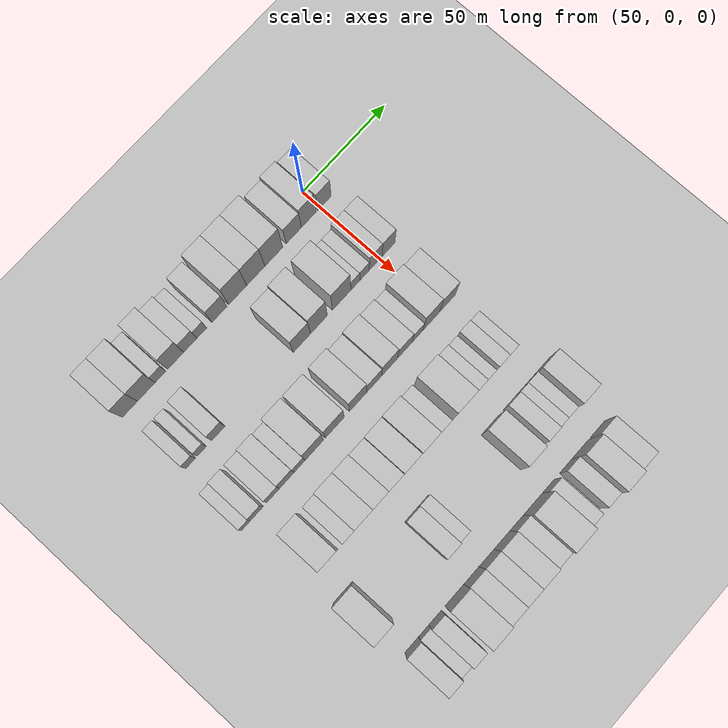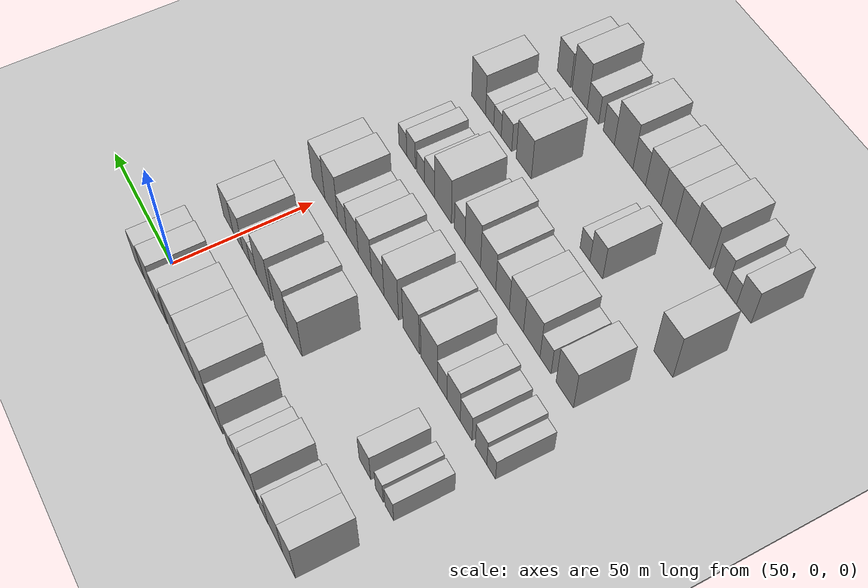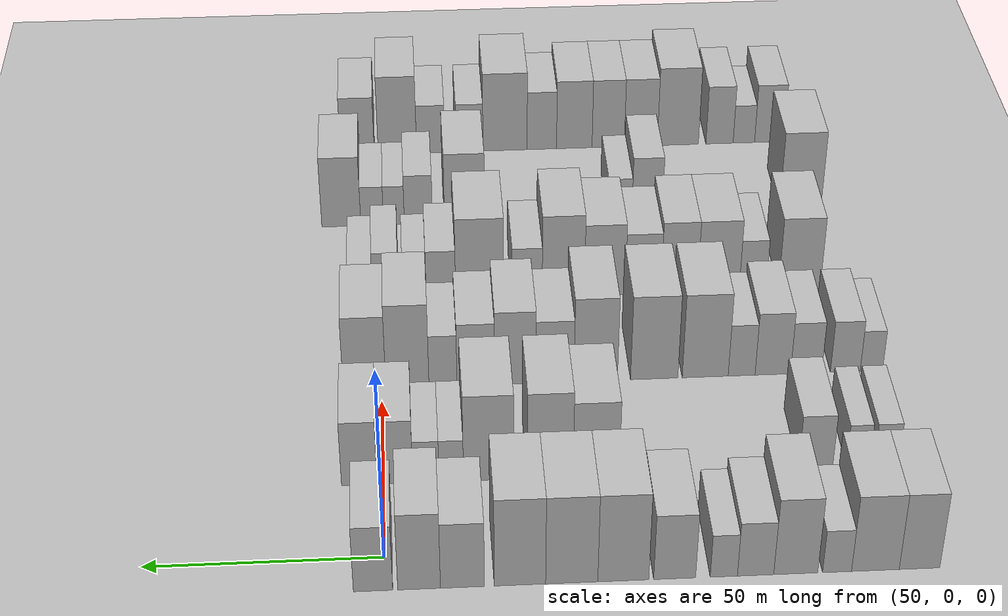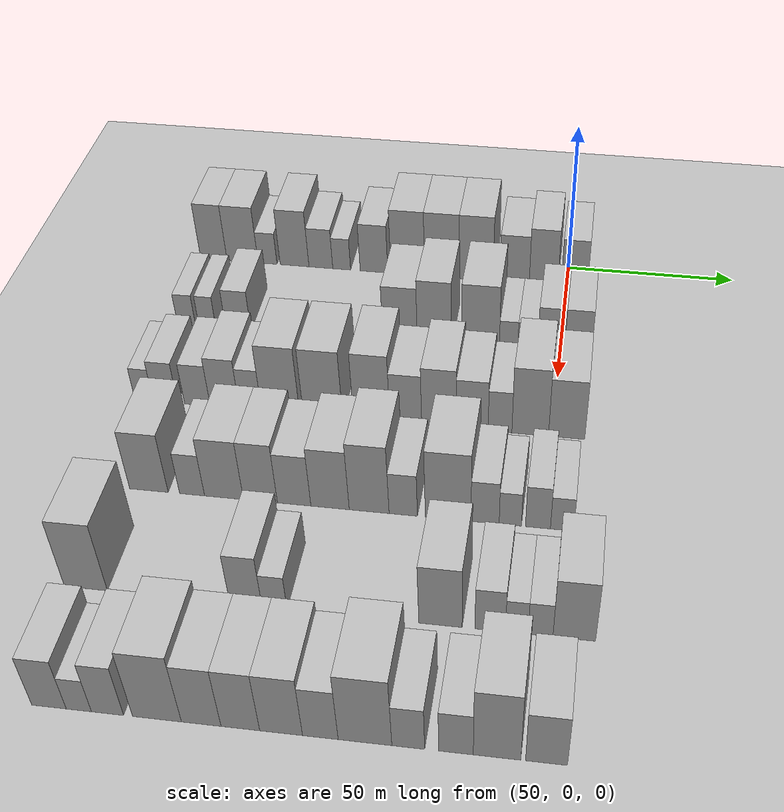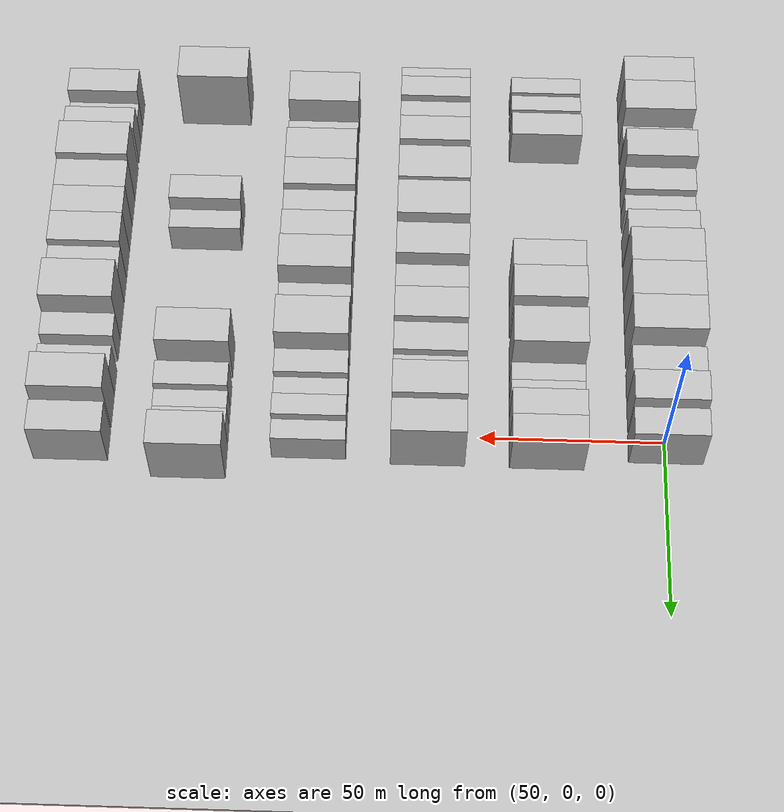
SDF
<sdf version="1.6">
 <world name="default">
  <include><name>ground_plane_1</name><uri>model://HANNAS_ground_plane</uri></include>
  <include>
   <name>ground_plane_2</name>
   <uri>model://HANNAS_ground_plane</uri>
   <pose>100 0 0  0 0 0</pose>
  </include>
  <model name="building_50">
   <static>1</static>
   <pose>50.0000 -109.7493 0 0.000000 0.000000 0.000000</pose>
   <link name="link">
    <pose>0 0 10.50 0 0 0</pose>
    <collision name="collision"><geometry><box><size>20.0000 8.4265 21.0000</size></box></geometry></collision>
    <visual name="visual">
     <cast_shadows>0</cast_shadows>
     <geometry><box><size>20.0000 8.4265 21.0000</size></box></geometry>
     <material>
      <script>
       <uri>model://HANNAS_wall/materials/scripts</uri>
       <uri>model://HANNAS_wall/materials/textures</uri>
       <name>vrc/HANNAS_wall</name>
      </script>
     </material>
    </visual>
   </link>
  </model>
  <model name="building_51">
   <static>1</static>
   <pose>50.0000 -100.5956 0 0.000000 0.000000 0.000000</pose>
   <link name="link">
    <pose>0 0 10.50 0 0 0</pose>
    <collision name="collision"><geometry><box><size>20.0000 9.8809 21.0000</size></box></geometry></collision>
    <visual name="visual">
     <cast_shadows>0</cast_shadows>
     <geometry><box><size>20.0000 9.8809 21.0000</size></box></geometry>
     <material>
      <script>
       <uri>model://HANNAS_wall/materials/scripts</uri>
       <uri>model://HANNAS_wall/materials/textures</uri>
       <name>vrc/HANNAS_wall</name>
      </script>
     </material>
    </visual>
   </link>
  </model>
  <model name="building_52">
   <static>1</static>
   <pose>50.0000 -92.6621 0 0.000000 0.000000 0.000000</pose>
   <link name="link">
    <pose>0 0 6.00 0 0 0</pose>
    <collision name="collision"><geometry><box><size>20.0000 5.9861 12.0000</size></box></geometry></collision>
    <visual name="visual">
     <cast_shadows>0</cast_shadows>
     <geometry><box><size>20.0000 5.9861 12.0000</size></box></geometry>
     <material>
      <script>
       <uri>model://HANNAS_wall/materials/scripts</uri>
       <uri>model://HANNAS_wall/materials/textures</uri>
       <name>vrc/HANNAS_wall</name>
      </script>
     </material>
    </visual>
   </link>
  </model>
  <model name="building_53">
   <static>1</static>
   <pose>50.0000 -84.1280 0 0.000000 0.000000 0.000000</pose>
   <link name="link">
    <pose>0 0 10.50 0 0 0</pose>
    <collision name="collision"><geometry><box><size>20.0000 9.0822 21.0000</size></box></geometry></collision>
    <visual name="visual">
     <cast_shadows>0</cast_shadows>
     <geometry><box><size>20.0000 9.0822 21.0000</size></box></geometry>
     <material>
      <script>
       <uri>model://HANNAS_wall/materials/scripts</uri>
       <uri>model://HANNAS_wall/materials/textures</uri>
       <name>vrc/HANNAS_wall</name>
      </script>
     </material>
    </visual>
   </link>
  </model>
  <model name="building_54">
   <static>1</static>
   <pose>50.0000 -75.8449 0 0.000000 0.000000 0.000000</pose>
   <link name="link">
    <pose>0 0 7.50 0 0 0</pose>
    <collision name="collision"><geometry><box><size>20.0000 7.4841 15.0000</size></box></geometry></collision>
    <visual name="visual">
     <cast_shadows>0</cast_shadows>
     <geometry><box><size>20.0000 7.4841 15.0000</size></box></geometry>
     <material>
      <script>
       <uri>model://HANNAS_wall/materials/scripts</uri>
       <uri>model://HANNAS_wall/materials/textures</uri>
       <name>vrc/HANNAS_wall</name>
      </script>
     </material>
    </visual>
   </link>
  </model>
  <model name="building_55">
   <static>1</static>
   <pose>50.0000 -69.3058 0 0.000000 0.000000 0.000000</pose>
   <link name="link">
    <pose>0 0 6.00 0 0 0</pose>
    <collision name="collision"><geometry><box><size>20.0000 5.5941 12.0000</size></box></geometry></collision>
    <visual name="visual">
     <cast_shadows>0</cast_shadows>
     <geometry><box><size>20.0000 5.5941 12.0000</size></box></geometry>
     <material>
      <script>
       <uri>model://HANNAS_wall/materials/scripts</uri>
       <uri>model://HANNAS_wall/materials/textures</uri>
       <name>vrc/HANNAS_wall</name>
      </script>
     </material>
    </visual>
   </link>
  </model>
  <model name="building_56">
   <static>1</static>
   <pose>50.0000 -59.1994 0 0.000000 0.000000 0.000000</pose>
   <link name="link">
    <pose>0 0 9.00 0 0 0</pose>
    <collision name="collision"><geometry><box><size>20.0000 8.6188 18.0000</size></box></geometry></collision>
    <visual name="visual">
     <cast_shadows>0</cast_shadows>
     <geometry><box><size>20.0000 8.6188 18.0000</size></box></geometry>
     <material>
      <script>
       <uri>model://HANNAS_wall/materials/scripts</uri>
       <uri>model://HANNAS_wall/materials/textures</uri>
       <name>vrc/HANNAS_wall</name>
      </script>
     </material>
    </visual>
   </link>
  </model>
  <model name="building_57">
   <static>1</static>
   <pose>50.0000 -48.6681 0 0.000000 0.000000 0.000000</pose>
   <link name="link">
    <pose>0 0 12.00 0 0 0</pose>
    <collision name="collision"><geometry><box><size>20.0000 10.4438 24.0000</size></box></geometry></collision>
    <visual name="visual">
     <cast_shadows>0</cast_shadows>
     <geometry><box><size>20.0000 10.4438 24.0000</size></box></geometry>
     <material>
      <script>
       <uri>model://HANNAS_wall/materials/scripts</uri>
       <uri>model://HANNAS_wall/materials/textures</uri>
       <name>vrc/HANNAS_wall</name>
      </script>
     </material>
    </visual>
   </link>
  </model>
  <model name="building_58">
   <static>1</static>
   <pose>50.0000 -38.1135 0 0.000000 0.000000 0.000000</pose>
   <link name="link">
    <pose>0 0 12.00 0 0 0</pose>
    <collision name="collision"><geometry><box><size>20.0000 10.6653 24.0000</size></box></geometry></collision>
    <visual name="visual">
     <cast_shadows>0</cast_shadows>
     <geometry><box><size>20.0000 10.6653 24.0000</size></box></geometry>
     <material>
      <script>
       <uri>model://HANNAS_wall/materials/scripts</uri>
       <uri>model://HANNAS_wall/materials/textures</uri>
       <name>vrc/HANNAS_wall</name>
      </script>
     </material>
    </visual>
   </link>
  </model>
  <model name="building_59">
   <static>1</static>
   <pose>50.0000 -27.5451 0 0.000000 0.000000 0.000000</pose>
   <link name="link">
    <pose>0 0 12.00 0 0 0</pose>
    <collision name="collision"><geometry><box><size>20.0000 10.4714 24.0000</size></box></geometry></collision>
    <visual name="visual">
     <cast_shadows>0</cast_shadows>
     <geometry><box><size>20.0000 10.4714 24.0000</size></box></geometry>
     <material>
      <script>
       <uri>model://HANNAS_wall/materials/scripts</uri>
       <uri>model://HANNAS_wall/materials/textures</uri>
       <name>vrc/HANNAS_wall</name>
      </script>
     </material>
    </visual>
   </link>
  </model>
  <model name="building_60">
   <static>1</static>
   <pose>50.0000 -15.8302 0 0.000000 0.000000 0.000000</pose>
   <link name="link">
    <pose>0 0 9.00 0 0 0</pose>
    <collision name="collision"><geometry><box><size>20.0000 8.9584 18.0000</size></box></geometry></collision>
    <visual name="visual">
     <cast_shadows>0</cast_shadows>
     <geometry><box><size>20.0000 8.9584 18.0000</size></box></geometry>
     <material>
      <script>
       <uri>model://HANNAS_wall/materials/scripts</uri>
       <uri>model://HANNAS_wall/materials/textures</uri>
       <name>vrc/HANNAS_wall</name>
      </script>
     </material>
    </visual>
   </link>
  </model>
  <model name="building_61">
   <static>1</static>
   <pose>50.0000 -7.0068 0 0.000000 0.000000 0.000000</pose>
   <link name="link">
    <pose>0 0 10.50 0 0 0</pose>
    <collision name="collision"><geometry><box><size>20.0000 8.6884 21.0000</size></box></geometry></collision>
    <visual name="visual">
     <cast_shadows>0</cast_shadows>
     <geometry><box><size>20.0000 8.6884 21.0000</size></box></geometry>
     <material>
      <script>
       <uri>model://HANNAS_wall/materials/scripts</uri>
       <uri>model://HANNAS_wall/materials/textures</uri>
       <name>vrc/HANNAS_wall</name>
      </script>
     </material>
    </visual>
   </link>
  </model>
  <model name="building_62">
   <static>1</static>
   <pose>50.0000 2.3282 0 0.000000 0.000000 0.000000</pose>
   <link name="link">
    <pose>0 0 9.00 0 0 0</pose>
    <collision name="collision"><geometry><box><size>20.0000 7.9817 18.0000</size></box></geometry></collision>
    <visual name="visual">
     <cast_shadows>0</cast_shadows>
     <geometry><box><size>20.0000 7.9817 18.0000</size></box></geometry>
     <material>
      <script>
       <uri>model://HANNAS_wall/materials/scripts</uri>
       <uri>model://HANNAS_wall/materials/textures</uri>
       <name>vrc/HANNAS_wall</name>
      </script>
     </material>
    </visual>
   </link>
  </model>
  <model name="building_171">
   <static>1</static>
   <pose>82.0000 -109.1645 0 0.000000 0.000000 0.000000</pose>
   <link name="link">
    <pose>0 0 6.00 0 0 0</pose>
    <collision name="collision"><geometry><box><size>20.0000 5.4299 12.0000</size></box></geometry></collision>
    <visual name="visual">
     <cast_shadows>0</cast_shadows>
     <geometry><box><size>20.0000 5.4299 12.0000</size></box></geometry>
     <material>
      <script>
       <uri>model://HANNAS_wall/materials/scripts</uri>
       <uri>model://HANNAS_wall/materials/textures</uri>
       <name>vrc/HANNAS_wall</name>
      </script>
     </material>
    </visual>
   </link>
  </model>
  <model name="building_172">
   <static>1</static>
   <pose>82.0000 -102.9163 0 0.000000 0.000000 0.000000</pose>
   <link name="link">
    <pose>0 0 6.00 0 0 0</pose>
    <collision name="collision"><geometry><box><size>20.0000 5.0665 12.0000</size></box></geometry></collision>
    <visual name="visual">
     <cast_shadows>0</cast_shadows>
     <geometry><box><size>20.0000 5.0665 12.0000</size></box></geometry>
     <material>
      <script>
       <uri>model://HANNAS_wall/materials/scripts</uri>
       <uri>model://HANNAS_wall/materials/textures</uri>
       <name>vrc/HANNAS_wall</name>
      </script>
     </material>
    </visual>
   </link>
  </model>
  <model name="building_173">
   <static>1</static>
   <pose>82.0000 -93.6411 0 0.000000 0.000000 0.000000</pose>
   <link name="link">
    <pose>0 0 7.50 0 0 0</pose>
    <collision name="collision"><geometry><box><size>20.0000 7.4840 15.0000</size></box></geometry></collision>
    <visual name="visual">
     <cast_shadows>0</cast_shadows>
     <geometry><box><size>20.0000 7.4840 15.0000</size></box></geometry>
     <material>
      <script>
       <uri>model://HANNAS_wall/materials/scripts</uri>
       <uri>model://HANNAS_wall/materials/textures</uri>
       <name>vrc/HANNAS_wall</name>
      </script>
     </material>
    </visual>
   </link>
  </model>
  <model name="building_174">
   <static>1</static>
   <pose>82.0000 -45.9025 0 0.000000 0.000000 0.000000</pose>
   <link name="link">
    <pose>0 0 10.50 0 0 0</pose>
    <collision name="collision"><geometry><box><size>20.0000 9.9977 21.0000</size></box></geometry></collision>
    <visual name="visual">
     <cast_shadows>0</cast_shadows>
     <geometry><box><size>20.0000 9.9977 21.0000</size></box></geometry>
     <material>
      <script>
       <uri>model://HANNAS_wall/materials/scripts</uri>
       <uri>model://HANNAS_wall/materials/textures</uri>
       <name>vrc/HANNAS_wall</name>
      </script>
     </material>
    </visual>
   </link>
  </model>
  <model name="building_175">
   <static>1</static>
   <pose>82.0000 -35.9852 0 0.000000 0.000000 0.000000</pose>
   <link name="link">
    <pose>0 0 12.00 0 0 0</pose>
    <collision name="collision"><geometry><box><size>20.0000 9.8368 24.0000</size></box></geometry></collision>
    <visual name="visual">
     <cast_shadows>0</cast_shadows>
     <geometry><box><size>20.0000 9.8368 24.0000</size></box></geometry>
     <material>
      <script>
       <uri>model://HANNAS_wall/materials/scripts</uri>
       <uri>model://HANNAS_wall/materials/textures</uri>
       <name>vrc/HANNAS_wall</name>
      </script>
     </material>
    </visual>
   </link>
  </model>
  <model name="building_176">
   <static>1</static>
   <pose>82.0000 -22.6646 0 0.000000 0.000000 0.000000</pose>
   <link name="link">
    <pose>0 0 12.00 0 0 0</pose>
    <collision name="collision"><geometry><box><size>20.0000 10.8043 24.0000</size></box></geometry></collision>
    <visual name="visual">
     <cast_shadows>0</cast_shadows>
     <geometry><box><size>20.0000 10.8043 24.0000</size></box></geometry>
     <material>
      <script>
       <uri>model://HANNAS_wall/materials/scripts</uri>
       <uri>model://HANNAS_wall/materials/textures</uri>
       <name>vrc/HANNAS_wall</name>
      </script>
     </material>
    </visual>
   </link>
  </model>
  <model name="building_177">
   <static>1</static>
   <pose>82.0000 -14.6249 0 0.000000 0.000000 0.000000</pose>
   <link name="link">
    <pose>0 0 6.00 0 0 0</pose>
    <collision name="collision"><geometry><box><size>20.0000 5.2751 12.0000</size></box></geometry></collision>
    <visual name="visual">
     <cast_shadows>0</cast_shadows>
     <geometry><box><size>20.0000 5.2751 12.0000</size></box></geometry>
     <material>
      <script>
       <uri>model://HANNAS_wall/materials/scripts</uri>
       <uri>model://HANNAS_wall/materials/textures</uri>
       <name>vrc/HANNAS_wall</name>
      </script>
     </material>
    </visual>
   </link>
  </model>
  <model name="building_178">
   <static>1</static>
   <pose>82.0000 -9.1745 0 0.000000 0.000000 0.000000</pose>
   <link name="link">
    <pose>0 0 6.00 0 0 0</pose>
    <collision name="collision"><geometry><box><size>20.0000 5.6258 12.0000</size></box></geometry></collision>
    <visual name="visual">
     <cast_shadows>0</cast_shadows>
     <geometry><box><size>20.0000 5.6258 12.0000</size></box></geometry>
     <material>
      <script>
       <uri>model://HANNAS_wall/materials/scripts</uri>
       <uri>model://HANNAS_wall/materials/textures</uri>
       <name>vrc/HANNAS_wall</name>
      </script>
     </material>
    </visual>
   </link>
  </model>
  <model name="building_179">
   <static>1</static>
   <pose>82.0000 -2.5331 0 0.000000 0.000000 0.000000</pose>
   <link name="link">
    <pose>0 0 9.00 0 0 0</pose>
    <collision name="collision"><geometry><box><size>20.0000 7.6569 18.0000</size></box></geometry></collision>
    <visual name="visual">
     <cast_shadows>0</cast_shadows>
     <geometry><box><size>20.0000 7.6569 18.0000</size></box></geometry>
     <material>
      <script>
       <uri>model://HANNAS_wall/materials/scripts</uri>
       <uri>model://HANNAS_wall/materials/textures</uri>
       <name>vrc/HANNAS_wall</name>
      </script>
     </material>
    </visual>
   </link>
  </model>
  <model name="building_180">
   <static>1</static>
   <pose>82.0000 5.1154 0 0.000000 0.000000 0.000000</pose>
   <link name="link">
    <pose>0 0 9.00 0 0 0</pose>
    <collision name="collision"><geometry><box><size>20.0000 7.6403 18.0000</size></box></geometry></collision>
    <visual name="visual">
     <cast_shadows>0</cast_shadows>
     <geometry><box><size>20.0000 7.6403 18.0000</size></box></geometry>
     <material>
      <script>
       <uri>model://HANNAS_wall/materials/scripts</uri>
       <uri>model://HANNAS_wall/materials/textures</uri>
       <name>vrc/HANNAS_wall</name>
      </script>
     </material>
    </visual>
   </link>
  </model>
  <model name="building_283">
   <static>1</static>
   <pose>114.0000 -111.9325 0 0.000000 0.000000 0.000000</pose>
   <link name="link">
    <pose>0 0 6.00 0 0 0</pose>
    <collision name="collision"><geometry><box><size>20.0000 5.1856 12.0000</size></box></geometry></collision>
    <visual name="visual">
     <cast_shadows>0</cast_shadows>
     <geometry><box><size>20.0000 5.1856 12.0000</size></box></geometry>
     <material>
      <script>
       <uri>model://HANNAS_wall/materials/scripts</uri>
       <uri>model://HANNAS_wall/materials/textures</uri>
       <name>vrc/HANNAS_wall</name>
      </script>
     </material>
    </visual>
   </link>
  </model>
  <model name="building_284">
   <static>1</static>
   <pose>114.0000 -105.9020 0 0.000000 0.000000 0.000000</pose>
   <link name="link">
    <pose>0 0 7.50 0 0 0</pose>
    <collision name="collision"><geometry><box><size>20.0000 6.8753 15.0000</size></box></geometry></collision>
    <visual name="visual">
     <cast_shadows>0</cast_shadows>
     <geometry><box><size>20.0000 6.8753 15.0000</size></box></geometry>
     <material>
      <script>
       <uri>model://HANNAS_wall/materials/scripts</uri>
       <uri>model://HANNAS_wall/materials/textures</uri>
       <name>vrc/HANNAS_wall</name>
      </script>
     </material>
    </visual>
   </link>
  </model>
  <model name="building_285">
   <static>1</static>
   <pose>114.0000 -96.8642 0 0.000000 0.000000 0.000000</pose>
   <link name="link">
    <pose>0 0 7.50 0 0 0</pose>
    <collision name="collision"><geometry><box><size>20.0000 7.2004 15.0000</size></box></geometry></collision>
    <visual name="visual">
     <cast_shadows>0</cast_shadows>
     <geometry><box><size>20.0000 7.2004 15.0000</size></box></geometry>
     <material>
      <script>
       <uri>model://HANNAS_wall/materials/scripts</uri>
       <uri>model://HANNAS_wall/materials/textures</uri>
       <name>vrc/HANNAS_wall</name>
      </script>
     </material>
    </visual>
   </link>
  </model>
  <model name="building_286">
   <static>1</static>
   <pose>114.0000 -89.1917 0 0.000000 0.000000 0.000000</pose>
   <link name="link">
    <pose>0 0 9.00 0 0 0</pose>
    <collision name="collision"><geometry><box><size>20.0000 8.1447 18.0000</size></box></geometry></collision>
    <visual name="visual">
     <cast_shadows>0</cast_shadows>
     <geometry><box><size>20.0000 8.1447 18.0000</size></box></geometry>
     <material>
      <script>
       <uri>model://HANNAS_wall/materials/scripts</uri>
       <uri>model://HANNAS_wall/materials/textures</uri>
       <name>vrc/HANNAS_wall</name>
      </script>
     </material>
    </visual>
   </link>
  </model>
  <model name="building_287">
   <static>1</static>
   <pose>114.0000 -82.0280 0 0.000000 0.000000 0.000000</pose>
   <link name="link">
    <pose>0 0 7.50 0 0 0</pose>
    <collision name="collision"><geometry><box><size>20.0000 6.1827 15.0000</size></box></geometry></collision>
    <visual name="visual">
     <cast_shadows>0</cast_shadows>
     <geometry><box><size>20.0000 6.1827 15.0000</size></box></geometry>
     <material>
      <script>
       <uri>model://HANNAS_wall/materials/scripts</uri>
       <uri>model://HANNAS_wall/materials/textures</uri>
       <name>vrc/HANNAS_wall</name>
      </script>
     </material>
    </visual>
   </link>
  </model>
  <model name="building_288">
   <static>1</static>
   <pose>114.0000 -73.6606 0 0.000000 0.000000 0.000000</pose>
   <link name="link">
    <pose>0 0 12.00 0 0 0</pose>
    <collision name="collision"><geometry><box><size>20.0000 10.5521 24.0000</size></box></geometry></collision>
    <visual name="visual">
     <cast_shadows>0</cast_shadows>
     <geometry><box><size>20.0000 10.5521 24.0000</size></box></geometry>
     <material>
      <script>
       <uri>model://HANNAS_wall/materials/scripts</uri>
       <uri>model://HANNAS_wall/materials/textures</uri>
       <name>vrc/HANNAS_wall</name>
      </script>
     </material>
    </visual>
   </link>
  </model>
  <model name="building_289">
   <static>1</static>
   <pose>114.0000 -61.9618 0 0.000000 0.000000 0.000000</pose>
   <link name="link">
    <pose>0 0 12.00 0 0 0</pose>
    <collision name="collision"><geometry><box><size>20.0000 10.8455 24.0000</size></box></geometry></collision>
    <visual name="visual">
     <cast_shadows>0</cast_shadows>
     <geometry><box><size>20.0000 10.8455 24.0000</size></box></geometry>
     <material>
      <script>
       <uri>model://HANNAS_wall/materials/scripts</uri>
       <uri>model://HANNAS_wall/materials/textures</uri>
       <name>vrc/HANNAS_wall</name>
      </script>
     </material>
    </visual>
   </link>
  </model>
  <model name="building_290">
   <static>1</static>
   <pose>114.0000 -48.5740 0 0.000000 0.000000 0.000000</pose>
   <link name="link">
    <pose>0 0 12.00 0 0 0</pose>
    <collision name="collision"><geometry><box><size>20.0000 9.9301 24.0000</size></box></geometry></collision>
    <visual name="visual">
     <cast_shadows>0</cast_shadows>
     <geometry><box><size>20.0000 9.9301 24.0000</size></box></geometry>
     <material>
      <script>
       <uri>model://HANNAS_wall/materials/scripts</uri>
       <uri>model://HANNAS_wall/materials/textures</uri>
       <name>vrc/HANNAS_wall</name>
      </script>
     </material>
    </visual>
   </link>
  </model>
  <model name="building_291">
   <static>1</static>
   <pose>114.0000 -39.2785 0 0.000000 0.000000 0.000000</pose>
   <link name="link">
    <pose>0 0 9.00 0 0 0</pose>
    <collision name="collision"><geometry><box><size>20.0000 8.6609 18.0000</size></box></geometry></collision>
    <visual name="visual">
     <cast_shadows>0</cast_shadows>
     <geometry><box><size>20.0000 8.6609 18.0000</size></box></geometry>
     <material>
      <script>
       <uri>model://HANNAS_wall/materials/scripts</uri>
       <uri>model://HANNAS_wall/materials/textures</uri>
       <name>vrc/HANNAS_wall</name>
      </script>
     </material>
    </visual>
   </link>
  </model>
  <model name="building_292">
   <static>1</static>
   <pose>114.0000 -30.2605 0 0.000000 0.000000 0.000000</pose>
   <link name="link">
    <pose>0 0 10.50 0 0 0</pose>
    <collision name="collision"><geometry><box><size>20.0000 9.3751 21.0000</size></box></geometry></collision>
    <visual name="visual">
     <cast_shadows>0</cast_shadows>
     <geometry><box><size>20.0000 9.3751 21.0000</size></box></geometry>
     <material>
      <script>
       <uri>model://HANNAS_wall/materials/scripts</uri>
       <uri>model://HANNAS_wall/materials/textures</uri>
       <name>vrc/HANNAS_wall</name>
      </script>
     </material>
    </visual>
   </link>
  </model>
  <model name="building_293">
   <static>1</static>
   <pose>114.0000 -21.2872 0 0.000000 0.000000 0.000000</pose>
   <link name="link">
    <pose>0 0 9.00 0 0 0</pose>
    <collision name="collision"><geometry><box><size>20.0000 8.5714 18.0000</size></box></geometry></collision>
    <visual name="visual">
     <cast_shadows>0</cast_shadows>
     <geometry><box><size>20.0000 8.5714 18.0000</size></box></geometry>
     <material>
      <script>
       <uri>model://HANNAS_wall/materials/scripts</uri>
       <uri>model://HANNAS_wall/materials/textures</uri>
       <name>vrc/HANNAS_wall</name>
      </script>
     </material>
    </visual>
   </link>
  </model>
  <model name="building_294">
   <static>1</static>
   <pose>114.0000 -13.8230 0 0.000000 0.000000 0.000000</pose>
   <link name="link">
    <pose>0 0 7.50 0 0 0</pose>
    <collision name="collision"><geometry><box><size>20.0000 6.3570 15.0000</size></box></geometry></collision>
    <visual name="visual">
     <cast_shadows>0</cast_shadows>
     <geometry><box><size>20.0000 6.3570 15.0000</size></box></geometry>
     <material>
      <script>
       <uri>model://HANNAS_wall/materials/scripts</uri>
       <uri>model://HANNAS_wall/materials/textures</uri>
       <name>vrc/HANNAS_wall</name>
      </script>
     </material>
    </visual>
   </link>
  </model>
  <model name="building_295">
   <static>1</static>
   <pose>114.0000 -5.7538 0 0.000000 0.000000 0.000000</pose>
   <link name="link">
    <pose>0 0 12.00 0 0 0</pose>
    <collision name="collision"><geometry><box><size>20.0000 9.7813 24.0000</size></box></geometry></collision>
    <visual name="visual">
     <cast_shadows>0</cast_shadows>
     <geometry><box><size>20.0000 9.7813 24.0000</size></box></geometry>
     <material>
      <script>
       <uri>model://HANNAS_wall/materials/scripts</uri>
       <uri>model://HANNAS_wall/materials/textures</uri>
       <name>vrc/HANNAS_wall</name>
      </script>
     </material>
    </visual>
   </link>
  </model>
  <model name="building_296">
   <static>1</static>
   <pose>114.0000 3.9595 0 0.000000 0.000000 0.000000</pose>
   <link name="link">
    <pose>0 0 10.50 0 0 0</pose>
    <collision name="collision"><geometry><box><size>20.0000 9.6454 21.0000</size></box></geometry></collision>
    <visual name="visual">
     <cast_shadows>0</cast_shadows>
     <geometry><box><size>20.0000 9.6454 21.0000</size></box></geometry>
     <material>
      <script>
       <uri>model://HANNAS_wall/materials/scripts</uri>
       <uri>model://HANNAS_wall/materials/textures</uri>
       <name>vrc/HANNAS_wall</name>
      </script>
     </material>
    </visual>
   </link>
  </model>
  <model name="building_408">
   <static>1</static>
   <pose>146.0000 -100.5377 0 0.000000 0.000000 0.000000</pose>
   <link name="link">
    <pose>0 0 10.50 0 0 0</pose>
    <collision name="collision"><geometry><box><size>20.0000 10.1176 21.0000</size></box></geometry></collision>
    <visual name="visual">
     <cast_shadows>0</cast_shadows>
     <geometry><box><size>20.0000 10.1176 21.0000</size></box></geometry>
     <material>
      <script>
       <uri>model://HANNAS_wall/materials/scripts</uri>
       <uri>model://HANNAS_wall/materials/textures</uri>
       <name>vrc/HANNAS_wall</name>
      </script>
     </material>
    </visual>
   </link>
  </model>
  <model name="building_409">
   <static>1</static>
   <pose>146.0000 -89.2114 0 0.000000 0.000000 0.000000</pose>
   <link name="link">
    <pose>0 0 7.50 0 0 0</pose>
    <collision name="collision"><geometry><box><size>20.0000 6.5349 15.0000</size></box></geometry></collision>
    <visual name="visual">
     <cast_shadows>0</cast_shadows>
     <geometry><box><size>20.0000 6.5349 15.0000</size></box></geometry>
     <material>
      <script>
       <uri>model://HANNAS_wall/materials/scripts</uri>
       <uri>model://HANNAS_wall/materials/textures</uri>
       <name>vrc/HANNAS_wall</name>
      </script>
     </material>
    </visual>
   </link>
  </model>
  <model name="building_410">
   <static>1</static>
   <pose>146.0000 -80.9002 0 0.000000 0.000000 0.000000</pose>
   <link name="link">
    <pose>0 0 10.50 0 0 0</pose>
    <collision name="collision"><geometry><box><size>20.0000 10.0876 21.0000</size></box></geometry></collision>
    <visual name="visual">
     <cast_shadows>0</cast_shadows>
     <geometry><box><size>20.0000 10.0876 21.0000</size></box></geometry>
     <material>
      <script>
       <uri>model://HANNAS_wall/materials/scripts</uri>
       <uri>model://HANNAS_wall/materials/textures</uri>
       <name>vrc/HANNAS_wall</name>
      </script>
     </material>
    </visual>
   </link>
  </model>
  <model name="building_411">
   <static>1</static>
   <pose>146.0000 -71.4566 0 0.000000 0.000000 0.000000</pose>
   <link name="link">
    <pose>0 0 10.50 0 0 0</pose>
    <collision name="collision"><geometry><box><size>20.0000 8.7996 21.0000</size></box></geometry></collision>
    <visual name="visual">
     <cast_shadows>0</cast_shadows>
     <geometry><box><size>20.0000 8.7996 21.0000</size></box></geometry>
     <material>
      <script>
       <uri>model://HANNAS_wall/materials/scripts</uri>
       <uri>model://HANNAS_wall/materials/textures</uri>
       <name>vrc/HANNAS_wall</name>
      </script>
     </material>
    </visual>
   </link>
  </model>
  <model name="building_412">
   <static>1</static>
   <pose>146.0000 -62.7540 0 0.000000 0.000000 0.000000</pose>
   <link name="link">
    <pose>0 0 9.00 0 0 0</pose>
    <collision name="collision"><geometry><box><size>20.0000 8.6055 18.0000</size></box></geometry></collision>
    <visual name="visual">
     <cast_shadows>0</cast_shadows>
     <geometry><box><size>20.0000 8.6055 18.0000</size></box></geometry>
     <material>
      <script>
       <uri>model://HANNAS_wall/materials/scripts</uri>
       <uri>model://HANNAS_wall/materials/textures</uri>
       <name>vrc/HANNAS_wall</name>
      </script>
     </material>
    </visual>
   </link>
  </model>
  <model name="building_413">
   <static>1</static>
   <pose>146.0000 -53.5443 0 0.000000 0.000000 0.000000</pose>
   <link name="link">
    <pose>0 0 10.50 0 0 0</pose>
    <collision name="collision"><geometry><box><size>20.0000 9.8141 21.0000</size></box></geometry></collision>
    <visual name="visual">
     <cast_shadows>0</cast_shadows>
     <geometry><box><size>20.0000 9.8141 21.0000</size></box></geometry>
     <material>
      <script>
       <uri>model://HANNAS_wall/materials/scripts</uri>
       <uri>model://HANNAS_wall/materials/textures</uri>
       <name>vrc/HANNAS_wall</name>
      </script>
     </material>
    </visual>
   </link>
  </model>
  <model name="building_414">
   <static>1</static>
   <pose>146.0000 -43.5685 0 0.000000 0.000000 0.000000</pose>
   <link name="link">
    <pose>0 0 12.00 0 0 0</pose>
    <collision name="collision"><geometry><box><size>20.0000 10.1373 24.0000</size></box></geometry></collision>
    <visual name="visual">
     <cast_shadows>0</cast_shadows>
     <geometry><box><size>20.0000 10.1373 24.0000</size></box></geometry>
     <material>
      <script>
       <uri>model://HANNAS_wall/materials/scripts</uri>
       <uri>model://HANNAS_wall/materials/textures</uri>
       <name>vrc/HANNAS_wall</name>
      </script>
     </material>
    </visual>
   </link>
  </model>
  <model name="building_415">
   <static>1</static>
   <pose>146.0000 -34.9119 0 0.000000 0.000000 0.000000</pose>
   <link name="link">
    <pose>0 0 7.50 0 0 0</pose>
    <collision name="collision"><geometry><box><size>20.0000 7.1759 15.0000</size></box></geometry></collision>
    <visual name="visual">
     <cast_shadows>0</cast_shadows>
     <geometry><box><size>20.0000 7.1759 15.0000</size></box></geometry>
     <material>
      <script>
       <uri>model://HANNAS_wall/materials/scripts</uri>
       <uri>model://HANNAS_wall/materials/textures</uri>
       <name>vrc/HANNAS_wall</name>
      </script>
     </material>
    </visual>
   </link>
  </model>
  <model name="building_416">
   <static>1</static>
   <pose>146.0000 -23.5795 0 0.000000 0.000000 0.000000</pose>
   <link name="link">
    <pose>0 0 12.00 0 0 0</pose>
    <collision name="collision"><geometry><box><size>20.0000 11.4889 24.0000</size></box></geometry></collision>
    <visual name="visual">
     <cast_shadows>0</cast_shadows>
     <geometry><box><size>20.0000 11.4889 24.0000</size></box></geometry>
     <material>
      <script>
       <uri>model://HANNAS_wall/materials/scripts</uri>
       <uri>model://HANNAS_wall/materials/textures</uri>
       <name>vrc/HANNAS_wall</name>
      </script>
     </material>
    </visual>
   </link>
  </model>
  <model name="building_417">
   <static>1</static>
   <pose>146.0000 -14.3249 0 0.000000 0.000000 0.000000</pose>
   <link name="link">
    <pose>0 0 7.50 0 0 0</pose>
    <collision name="collision"><geometry><box><size>20.0000 7.0203 15.0000</size></box></geometry></collision>
    <visual name="visual">
     <cast_shadows>0</cast_shadows>
     <geometry><box><size>20.0000 7.0203 15.0000</size></box></geometry>
     <material>
      <script>
       <uri>model://HANNAS_wall/materials/scripts</uri>
       <uri>model://HANNAS_wall/materials/textures</uri>
       <name>vrc/HANNAS_wall</name>
      </script>
     </material>
    </visual>
   </link>
  </model>
  <model name="building_418">
   <static>1</static>
   <pose>146.0000 -8.0404 0 0.000000 0.000000 0.000000</pose>
   <link name="link">
    <pose>0 0 6.00 0 0 0</pose>
    <collision name="collision"><geometry><box><size>20.0000 5.5487 12.0000</size></box></geometry></collision>
    <visual name="visual">
     <cast_shadows>0</cast_shadows>
     <geometry><box><size>20.0000 5.5487 12.0000</size></box></geometry>
     <material>
      <script>
       <uri>model://HANNAS_wall/materials/scripts</uri>
       <uri>model://HANNAS_wall/materials/textures</uri>
       <name>vrc/HANNAS_wall</name>
      </script>
     </material>
    </visual>
   </link>
  </model>
  <model name="building_419">
   <static>1</static>
   <pose>146.0000 -1.1659 0 0.000000 0.000000 0.000000</pose>
   <link name="link">
    <pose>0 0 7.50 0 0 0</pose>
    <collision name="collision"><geometry><box><size>20.0000 6.2004 15.0000</size></box></geometry></collision>
    <visual name="visual">
     <cast_shadows>0</cast_shadows>
     <geometry><box><size>20.0000 6.2004 15.0000</size></box></geometry>
     <material>
      <script>
       <uri>model://HANNAS_wall/materials/scripts</uri>
       <uri>model://HANNAS_wall/materials/textures</uri>
       <name>vrc/HANNAS_wall</name>
      </script>
     </material>
    </visual>
   </link>
  </model>
  <model name="building_420">
   <static>1</static>
   <pose>146.0000 4.8171 0 0.000000 0.000000 0.000000</pose>
   <link name="link">
    <pose>0 0 6.00 0 0 0</pose>
    <collision name="collision"><geometry><box><size>20.0000 5.7657 12.0000</size></box></geometry></collision>
    <visual name="visual">
     <cast_shadows>0</cast_shadows>
     <geometry><box><size>20.0000 5.7657 12.0000</size></box></geometry>
     <material>
      <script>
       <uri>model://HANNAS_wall/materials/scripts</uri>
       <uri>model://HANNAS_wall/materials/textures</uri>
       <name>vrc/HANNAS_wall</name>
      </script>
     </material>
    </visual>
   </link>
  </model>
  <model name="building_522">
   <static>1</static>
   <pose>178.0000 -105.9045 0 0.000000 0.000000 0.000000</pose>
   <link name="link">
    <pose>0 0 12.00 0 0 0</pose>
    <collision name="collision"><geometry><box><size>20.0000 10.5349 24.0000</size></box></geometry></collision>
    <visual name="visual">
     <cast_shadows>0</cast_shadows>
     <geometry><box><size>20.0000 10.5349 24.0000</size></box></geometry>
     <material>
      <script>
       <uri>model://HANNAS_wall/materials/scripts</uri>
       <uri>model://HANNAS_wall/materials/textures</uri>
       <name>vrc/HANNAS_wall</name>
      </script>
     </material>
    </visual>
   </link>
  </model>
  <model name="building_523">
   <static>1</static>
   <pose>178.0000 -67.0959 0 0.000000 0.000000 0.000000</pose>
   <link name="link">
    <pose>0 0 9.00 0 0 0</pose>
    <collision name="collision"><geometry><box><size>20.0000 7.6941 18.0000</size></box></geometry></collision>
    <visual name="visual">
     <cast_shadows>0</cast_shadows>
     <geometry><box><size>20.0000 7.6941 18.0000</size></box></geometry>
     <material>
      <script>
       <uri>model://HANNAS_wall/materials/scripts</uri>
       <uri>model://HANNAS_wall/materials/textures</uri>
       <name>vrc/HANNAS_wall</name>
      </script>
     </material>
    </visual>
   </link>
  </model>
  <model name="building_524">
   <static>1</static>
   <pose>178.0000 -60.2596 0 0.000000 0.000000 0.000000</pose>
   <link name="link">
    <pose>0 0 6.00 0 0 0</pose>
    <collision name="collision"><geometry><box><size>20.0000 5.9784 12.0000</size></box></geometry></collision>
    <visual name="visual">
     <cast_shadows>0</cast_shadows>
     <geometry><box><size>20.0000 5.9784 12.0000</size></box></geometry>
     <material>
      <script>
       <uri>model://HANNAS_wall/materials/scripts</uri>
       <uri>model://HANNAS_wall/materials/textures</uri>
       <name>vrc/HANNAS_wall</name>
      </script>
     </material>
    </visual>
   </link>
  </model>
  <model name="building_525">
   <static>1</static>
   <pose>178.0000 -21.1772 0 0.000000 0.000000 0.000000</pose>
   <link name="link">
    <pose>0 0 10.50 0 0 0</pose>
    <collision name="collision"><geometry><box><size>20.0000 10.0622 21.0000</size></box></geometry></collision>
    <visual name="visual">
     <cast_shadows>0</cast_shadows>
     <geometry><box><size>20.0000 10.0622 21.0000</size></box></geometry>
     <material>
      <script>
       <uri>model://HANNAS_wall/materials/scripts</uri>
       <uri>model://HANNAS_wall/materials/textures</uri>
       <name>vrc/HANNAS_wall</name>
      </script>
     </material>
    </visual>
   </link>
  </model>
  <model name="building_526">
   <static>1</static>
   <pose>178.0000 -9.6247 0 0.000000 0.000000 0.000000</pose>
   <link name="link">
    <pose>0 0 7.50 0 0 0</pose>
    <collision name="collision"><geometry><box><size>20.0000 7.0428 15.0000</size></box></geometry></collision>
    <visual name="visual">
     <cast_shadows>0</cast_shadows>
     <geometry><box><size>20.0000 7.0428 15.0000</size></box></geometry>
     <material>
      <script>
       <uri>model://HANNAS_wall/materials/scripts</uri>
       <uri>model://HANNAS_wall/materials/textures</uri>
       <name>vrc/HANNAS_wall</name>
      </script>
     </material>
    </visual>
   </link>
  </model>
  <model name="building_527">
   <static>1</static>
   <pose>178.0000 -3.5042 0 0.000000 0.000000 0.000000</pose>
   <link name="link">
    <pose>0 0 6.00 0 0 0</pose>
    <collision name="collision"><geometry><box><size>20.0000 5.1981 12.0000</size></box></geometry></collision>
    <visual name="visual">
     <cast_shadows>0</cast_shadows>
     <geometry><box><size>20.0000 5.1981 12.0000</size></box></geometry>
     <material>
      <script>
       <uri>model://HANNAS_wall/materials/scripts</uri>
       <uri>model://HANNAS_wall/materials/textures</uri>
       <name>vrc/HANNAS_wall</name>
      </script>
     </material>
    </visual>
   </link>
  </model>
  <model name="building_528">
   <static>1</static>
   <pose>178.0000 1.9361 0 0.000000 0.000000 0.000000</pose>
   <link name="link">
    <pose>0 0 6.00 0 0 0</pose>
    <collision name="collision"><geometry><box><size>20.0000 5.6824 12.0000</size></box></geometry></collision>
    <visual name="visual">
     <cast_shadows>0</cast_shadows>
     <geometry><box><size>20.0000 5.6824 12.0000</size></box></geometry>
     <material>
      <script>
       <uri>model://HANNAS_wall/materials/scripts</uri>
       <uri>model://HANNAS_wall/materials/textures</uri>
       <name>vrc/HANNAS_wall</name>
      </script>
     </material>
    </visual>
   </link>
  </model>
  <model name="building_529">
   <static>1</static>
   <pose>178.0000 9.6433 0 0.000000 0.000000 0.000000</pose>
   <link name="link">
    <pose>0 0 10.50 0 0 0</pose>
    <collision name="collision"><geometry><box><size>20.0000 9.7321 21.0000</size></box></geometry></collision>
    <visual name="visual">
     <cast_shadows>0</cast_shadows>
     <geometry><box><size>20.0000 9.7321 21.0000</size></box></geometry>
     <material>
      <script>
       <uri>model://HANNAS_wall/materials/scripts</uri>
       <uri>model://HANNAS_wall/materials/textures</uri>
       <name>vrc/HANNAS_wall</name>
      </script>
     </material>
    </visual>
   </link>
  </model>
  <model name="building_641">
   <static>1</static>
   <pose>210.0000 -102.9437 0 0.000000 0.000000 0.000000</pose>
   <link name="link">
    <pose>0 0 9.00 0 0 0</pose>
    <collision name="collision"><geometry><box><size>20.0000 7.7983 18.0000</size></box></geometry></collision>
    <visual name="visual">
     <cast_shadows>0</cast_shadows>
     <geometry><box><size>20.0000 7.7983 18.0000</size></box></geometry>
     <material>
      <script>
       <uri>model://HANNAS_wall/materials/scripts</uri>
       <uri>model://HANNAS_wall/materials/textures</uri>
       <name>vrc/HANNAS_wall</name>
      </script>
     </material>
    </visual>
   </link>
  </model>
  <model name="building_642">
   <static>1</static>
   <pose>210.0000 -96.1972 0 0.000000 0.000000 0.000000</pose>
   <link name="link">
    <pose>0 0 6.00 0 0 0</pose>
    <collision name="collision"><geometry><box><size>20.0000 5.6947 12.0000</size></box></geometry></collision>
    <visual name="visual">
     <cast_shadows>0</cast_shadows>
     <geometry><box><size>20.0000 5.6947 12.0000</size></box></geometry>
     <material>
      <script>
       <uri>model://HANNAS_wall/materials/scripts</uri>
       <uri>model://HANNAS_wall/materials/textures</uri>
       <name>vrc/HANNAS_wall</name>
      </script>
     </material>
    </visual>
   </link>
  </model>
  <model name="building_643">
   <static>1</static>
   <pose>210.0000 -89.7372 0 0.000000 0.000000 0.000000</pose>
   <link name="link">
    <pose>0 0 9.00 0 0 0</pose>
    <collision name="collision"><geometry><box><size>20.0000 7.2255 18.0000</size></box></geometry></collision>
    <visual name="visual">
     <cast_shadows>0</cast_shadows>
     <geometry><box><size>20.0000 7.2255 18.0000</size></box></geometry>
     <material>
      <script>
       <uri>model://HANNAS_wall/materials/scripts</uri>
       <uri>model://HANNAS_wall/materials/textures</uri>
       <name>vrc/HANNAS_wall</name>
      </script>
     </material>
    </visual>
   </link>
  </model>
  <model name="building_644">
   <static>1</static>
   <pose>210.0000 -78.6769 0 0.000000 0.000000 0.000000</pose>
   <link name="link">
    <pose>0 0 12.00 0 0 0</pose>
    <collision name="collision"><geometry><box><size>20.0000 10.8950 24.0000</size></box></geometry></collision>
    <visual name="visual">
     <cast_shadows>0</cast_shadows>
     <geometry><box><size>20.0000 10.8950 24.0000</size></box></geometry>
     <material>
      <script>
       <uri>model://HANNAS_wall/materials/scripts</uri>
       <uri>model://HANNAS_wall/materials/textures</uri>
       <name>vrc/HANNAS_wall</name>
      </script>
     </material>
    </visual>
   </link>
  </model>
  <model name="building_645">
   <static>1</static>
   <pose>210.0000 -68.8512 0 0.000000 0.000000 0.000000</pose>
   <link name="link">
    <pose>0 0 10.50 0 0 0</pose>
    <collision name="collision"><geometry><box><size>20.0000 8.7564 21.0000</size></box></geometry></collision>
    <visual name="visual">
     <cast_shadows>0</cast_shadows>
     <geometry><box><size>20.0000 8.7564 21.0000</size></box></geometry>
     <material>
      <script>
       <uri>model://HANNAS_wall/materials/scripts</uri>
       <uri>model://HANNAS_wall/materials/textures</uri>
       <name>vrc/HANNAS_wall</name>
      </script>
     </material>
    </visual>
   </link>
  </model>
  <model name="building_646">
   <static>1</static>
   <pose>210.0000 -60.2188 0 0.000000 0.000000 0.000000</pose>
   <link name="link">
    <pose>0 0 10.50 0 0 0</pose>
    <collision name="collision"><geometry><box><size>20.0000 8.5084 21.0000</size></box></geometry></collision>
    <visual name="visual">
     <cast_shadows>0</cast_shadows>
     <geometry><box><size>20.0000 8.5084 21.0000</size></box></geometry>
     <material>
      <script>
       <uri>model://HANNAS_wall/materials/scripts</uri>
       <uri>model://HANNAS_wall/materials/textures</uri>
       <name>vrc/HANNAS_wall</name>
      </script>
     </material>
    </visual>
   </link>
  </model>
  <model name="building_647">
   <static>1</static>
   <pose>210.0000 -51.2784 0 0.000000 0.000000 0.000000</pose>
   <link name="link">
    <pose>0 0 10.50 0 0 0</pose>
    <collision name="collision"><geometry><box><size>20.0000 9.3723 21.0000</size></box></geometry></collision>
    <visual name="visual">
     <cast_shadows>0</cast_shadows>
     <geometry><box><size>20.0000 9.3723 21.0000</size></box></geometry>
     <material>
      <script>
       <uri>model://HANNAS_wall/materials/scripts</uri>
       <uri>model://HANNAS_wall/materials/textures</uri>
       <name>vrc/HANNAS_wall</name>
      </script>
     </material>
    </visual>
   </link>
  </model>
  <model name="building_648">
   <static>1</static>
   <pose>210.0000 -42.7213 0 0.000000 0.000000 0.000000</pose>
   <link name="link">
    <pose>0 0 9.00 0 0 0</pose>
    <collision name="collision"><geometry><box><size>20.0000 7.7418 18.0000</size></box></geometry></collision>
    <visual name="visual">
     <cast_shadows>0</cast_shadows>
     <geometry><box><size>20.0000 7.7418 18.0000</size></box></geometry>
     <material>
      <script>
       <uri>model://HANNAS_wall/materials/scripts</uri>
       <uri>model://HANNAS_wall/materials/textures</uri>
       <name>vrc/HANNAS_wall</name>
      </script>
     </material>
    </visual>
   </link>
  </model>
  <model name="building_649">
   <static>1</static>
   <pose>210.0000 -33.0473 0 0.000000 0.000000 0.000000</pose>
   <link name="link">
    <pose>0 0 12.00 0 0 0</pose>
    <collision name="collision"><geometry><box><size>20.0000 11.6063 24.0000</size></box></geometry></collision>
    <visual name="visual">
     <cast_shadows>0</cast_shadows>
     <geometry><box><size>20.0000 11.6063 24.0000</size></box></geometry>
     <material>
      <script>
       <uri>model://HANNAS_wall/materials/scripts</uri>
       <uri>model://HANNAS_wall/materials/textures</uri>
       <name>vrc/HANNAS_wall</name>
      </script>
     </material>
    </visual>
   </link>
  </model>
  <model name="building_650">
   <static>1</static>
   <pose>210.0000 -23.7194 0 0.000000 0.000000 0.000000</pose>
   <link name="link">
    <pose>0 0 7.50 0 0 0</pose>
    <collision name="collision"><geometry><box><size>20.0000 7.0494 15.0000</size></box></geometry></collision>
    <visual name="visual">
     <cast_shadows>0</cast_shadows>
     <geometry><box><size>20.0000 7.0494 15.0000</size></box></geometry>
     <material>
      <script>
       <uri>model://HANNAS_wall/materials/scripts</uri>
       <uri>model://HANNAS_wall/materials/textures</uri>
       <name>vrc/HANNAS_wall</name>
      </script>
     </material>
    </visual>
   </link>
  </model>
  <model name="building_651">
   <static>1</static>
   <pose>210.0000 -13.5109 0 0.000000 0.000000 0.000000</pose>
   <link name="link">
    <pose>0 0 7.50 0 0 0</pose>
    <collision name="collision"><geometry><box><size>20.0000 7.3677 15.0000</size></box></geometry></collision>
    <visual name="visual">
     <cast_shadows>0</cast_shadows>
     <geometry><box><size>20.0000 7.3677 15.0000</size></box></geometry>
     <material>
      <script>
       <uri>model://HANNAS_wall/materials/scripts</uri>
       <uri>model://HANNAS_wall/materials/textures</uri>
       <name>vrc/HANNAS_wall</name>
      </script>
     </material>
    </visual>
   </link>
  </model>
  <model name="building_652">
   <static>1</static>
   <pose>210.0000 -4.7943 0 0.000000 0.000000 0.000000</pose>
   <link name="link">
    <pose>0 0 12.00 0 0 0</pose>
    <collision name="collision"><geometry><box><size>20.0000 10.0655 24.0000</size></box></geometry></collision>
    <visual name="visual">
     <cast_shadows>0</cast_shadows>
     <geometry><box><size>20.0000 10.0655 24.0000</size></box></geometry>
     <material>
      <script>
       <uri>model://HANNAS_wall/materials/scripts</uri>
       <uri>model://HANNAS_wall/materials/textures</uri>
       <name>vrc/HANNAS_wall</name>
      </script>
     </material>
    </visual>
   </link>
  </model>
  <model name="building_653">
   <static>1</static>
   <pose>210.0000 5.6536 0 0.000000 0.000000 0.000000</pose>
   <link name="link">
    <pose>0 0 9.00 0 0 0</pose>
    <collision name="collision"><geometry><box><size>20.0000 8.8304 18.0000</size></box></geometry></collision>
    <visual name="visual">
     <cast_shadows>0</cast_shadows>
     <geometry><box><size>20.0000 8.8304 18.0000</size></box></geometry>
     <material>
      <script>
       <uri>model://HANNAS_wall/materials/scripts</uri>
       <uri>model://HANNAS_wall/materials/textures</uri>
       <name>vrc/HANNAS_wall</name>
      </script>
     </material>
    </visual>
   </link>
  </model>
 </world>
</sdf>
